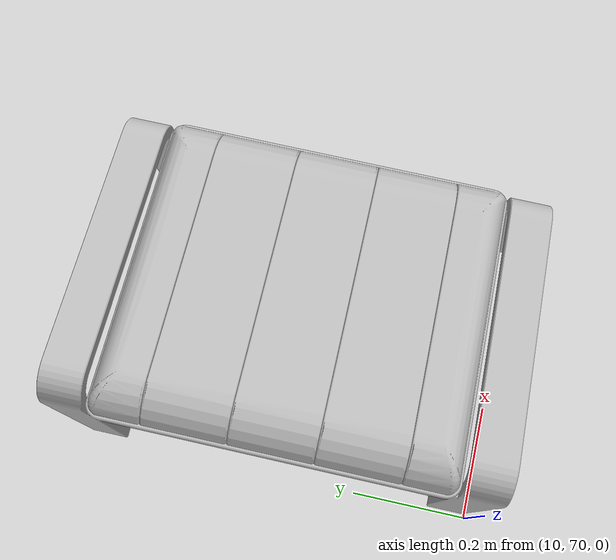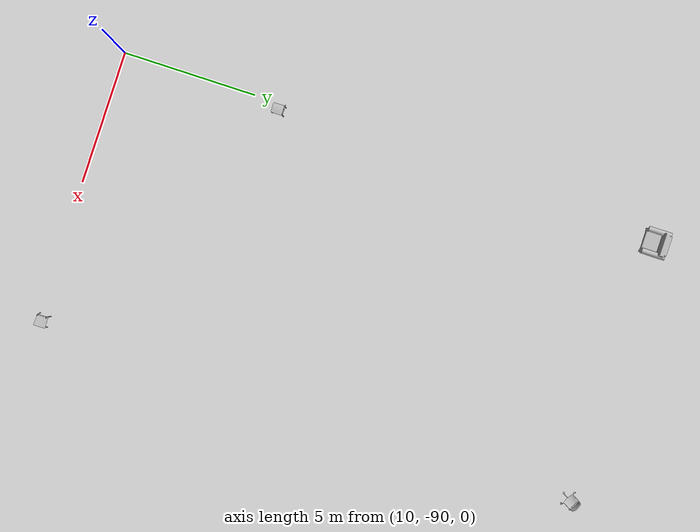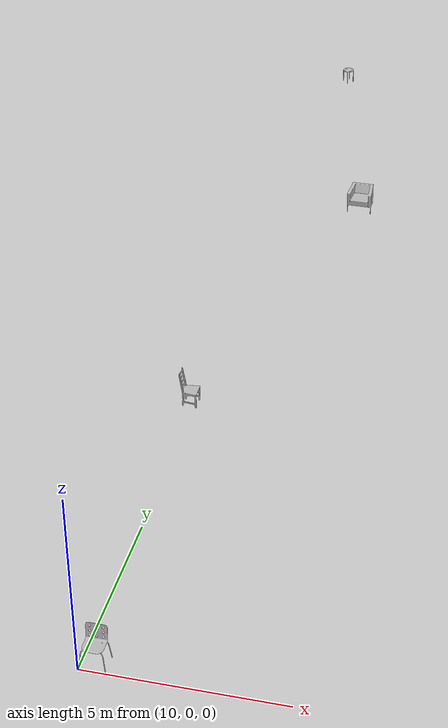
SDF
<sdf version="1.5">
 <world name="default">
  <include><uri>model://sun</uri></include>
  <include><uri>model://ground_plane</uri></include>
  <include><uri>model://IKEA_chair_BORJE</uri><pose>10 -90 0 0 0 0</pose><static>0</static></include>
  <include><uri>model://IKEA_chair_EKTORP</uri><pose>10 -70 0 0 0 0</pose><static>0</static></include>
  <include><uri>model://IKEA_chair_HERMAN</uri><pose>10 -40 0 0 0 0</pose><static>0</static></include>
  <include><uri>model://IKEA_chair_INGOLF</uri><pose>10 -30 0 0 0 0</pose><static>0</static></include>
  <include><uri>model://IKEA_chair_IVAR</uri><pose>10 -20 0 0 0 0</pose><static>0</static></include>
  <include><uri>model://IKEA_chair_JULES</uri><pose>10 000 0 0 0 0</pose><static>0</static></include>
  <include><uri>model://IKEA_chair_KAUSTBY</uri><pose>10 010 0 0 0 0</pose><static>0</static></include>
  <include><uri>model://IKEA_chair_KLAPPSTA</uri><pose>10 020 0 0 0 0</pose><static>0</static></include>
  <include><uri>model://IKEA_chair_MARIUS</uri><pose>10 030 0 0 0 0</pose><static>0</static></include>
  <include><uri>model://IKEA_chair_PATRIK</uri><pose>10 060 0 0 0 0</pose><static>0</static></include>
  <include><uri>model://IKEA_chair_POANG</uri><pose>10 070 0 0 0 0</pose><static>0</static></include>
  <include><uri>model://IKEA_chair_SIGURD</uri><pose>20 -90 0 0 0 0</pose><static>0</static></include>
  <include><uri>model://IKEA_chair_SNILLE</uri><pose>20 -70 0 0 0 0</pose><static>0</static></include>
 </world>
</sdf>

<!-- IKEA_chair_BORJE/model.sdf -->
<sdf version='1.0'>
  <model name='IKEA_chair_BORJE'>
    <static>0</static>
    <link name='link_0'>
      <inertial>
        <mass>1.2701750200945325</mass>
        <inertia>
          <ixx>97055.25334822082</ixx>
          <ixy>5.3782572947442535</ixy>
          <ixz>1.7893252997398377</ixz>
          <iyy>37123.89845614624</iyy>
          <iyz>-15042.314491013527</iyz>
          <izz>87002.98955933255</izz>
        </inertia>
        <pose frame=''>0.265414 0.391875 -6.069073 0 -0 0</pose>
      </inertial>
      <pose frame=''>0 0 0 0 -0 0</pose>
      <visual name='visual'>
        <pose frame=''>0 0 0 1.58096 -0 0</pose>
        <geometry>
          <mesh>
            <uri>model://ikea_models/meshes/IKEA_chair_BORJE/nojitter_png_borje_chair_obj0/borje_chair_obj0_object.obj</uri>
            <scale>0.010000 0.010000 0.010000</scale>
          </mesh>
        </geometry>
      </visual>
      <collision name='collision'>
        <pose frame=''>0 0 0 1.58096 -0 0</pose>
        <geometry>
          <mesh>
            <uri>model://ikea_models/meshes/IKEA_chair_BORJE/nojitter_png_borje_chair_obj0/borje_chair_obj0_object.obj</uri>
            <scale>0.010000 0.010000 0.010000</scale>
          </mesh>
        </geometry>
      </collision>
    </link>
  </model>
</sdf>

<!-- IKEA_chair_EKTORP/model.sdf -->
<sdf version='1.0'>
  <model name='IKEA_chair_EKTORP'>
    <static>0</static>
    <link name='link_0'>
      <inertial>
        <mass>6.69996780991953</mass>
        <inertia>
          <ixx>759052.0931993766</ixx>
          <ixy>-690.8612255697251</ixy>
          <ixz>258.8571697921753</ixz>
          <iyy>975696.508300458</iyy>
          <iyz>-54343.26309907246</iyz>
          <izz>875503.1329380261</izz>
        </inertia>
        <pose frame=''>0.633241 0.379235 -0.593648 0 -0 0</pose>
      </inertial>
      <pose frame=''>0 0 0 0 -0 0</pose>
      <visual name='visual'>
        <pose frame=''>0 0 0 1.58096 -0 0</pose>
        <geometry>
          <mesh>
            <uri>model://ikea_models/meshes/IKEA_chair_EKTORP/nojitter_png_Ektorp_armchair_toft_obj0/Ektorp_armchair_toft_obj0_object.obj</uri>
            <scale>0.010000 0.010000 0.010000</scale>
          </mesh>
        </geometry>
      </visual>
      <collision name='collision'>
        <pose frame=''>0 0 0 1.58096 -0 0</pose>
        <geometry>
          <mesh>
            <uri>model://ikea_models/meshes/IKEA_chair_EKTORP/nojitter_png_Ektorp_armchair_toft_obj0/Ektorp_armchair_toft_obj0_object.obj</uri>
            <scale>0.010000 0.010000 0.010000</scale>
          </mesh>
        </geometry>
      </collision>
    </link>
  </model>
</sdf>

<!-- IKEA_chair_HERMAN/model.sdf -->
<sdf version='1.0'>
  <model name='IKEA_chair_HERMAN'>
    <static>0</static>
    <link name='link_0'>
      <inertial>
        <mass>1.2788298165119858</mass>
        <inertia>
          <ixx>79685.1370511254</ixx>
          <ixy>-84.64093994927407</ixy>
          <ixz>17.035141288757327</ixz>
          <iyy>44455.17980055237</iyy>
          <iyz>-17152.22499446416</iyz>
          <izz>71109.13666590309</izz>
        </inertia>
        <pose frame=''>2.355913 0.358004 -0.758796 0 -0 0</pose>
      </inertial>
      <pose frame=''>0 0 0 0 -0 0</pose>
      <visual name='visual'>
        <pose frame=''>0 0 0 1.58096 -0 0</pose>
        <geometry>
          <mesh>
            <uri>model://ikea_models/meshes/IKEA_chair_HERMAN/nojitter_png_2df47c3d564ce9fec858c7ee0d79c483_obj0/2df47c3d564ce9fec858c7ee0d79c483_obj0_object.obj</uri>
            <scale>0.010000 0.010000 0.010000</scale>
          </mesh>
        </geometry>
      </visual>
      <collision name='collision'>
        <pose frame=''>0 0 0 1.58096 -0 0</pose>
        <geometry>
          <mesh>
            <uri>model://ikea_models/meshes/IKEA_chair_HERMAN/nojitter_png_2df47c3d564ce9fec858c7ee0d79c483_obj0/2df47c3d564ce9fec858c7ee0d79c483_obj0_object.obj</uri>
            <scale>0.010000 0.010000 0.010000</scale>
          </mesh>
        </geometry>
      </collision>
    </link>
  </model>
</sdf>

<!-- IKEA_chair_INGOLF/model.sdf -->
<sdf version='1.0'>
  <model name='IKEA_chair_INGOLF'>
    <static>0</static>
    <link name='link_0'>
      <inertial>
        <mass>1.5452195732872798</mass>
        <inertia>
          <ixx>107387102.56389043</ixx>
          <ixy>-15323472.277896073</ixy>
          <ixz>-0.98556009765625</ixz>
          <iyy>54021845.32280055</iyy>
          <iyz>2.28608427734375</iyz>
          <izz>110725069.52396034</izz>
        </inertia>
        <pose frame=''>-0.264783 0.380963 -0.215000 0 -0 0</pose>
      </inertial>
      <pose frame=''>0 0 0 0 -0 0</pose>
      <visual name='visual'>
        <pose frame=''>0 0 0 1.58096 -0 0</pose>
        <geometry>
          <mesh>
            <uri>model://ikea_models/meshes/IKEA_chair_INGOLF/nojitter_png_2f0a94efe6d1da7f8616812464c86290_obj0/2f0a94efe6d1da7f8616812464c86290_obj0_object.obj</uri>
            <scale>0.001000 0.001000 0.001000</scale>
          </mesh>
        </geometry>
      </visual>
      <collision name='collision'>
        <pose frame=''>0 0 0 1.58096 -0 0</pose>
        <geometry>
          <mesh>
            <uri>model://ikea_models/meshes/IKEA_chair_INGOLF/nojitter_png_2f0a94efe6d1da7f8616812464c86290_obj0/2f0a94efe6d1da7f8616812464c86290_obj0_object.obj</uri>
            <scale>0.001000 0.001000 0.001000</scale>
          </mesh>
        </geometry>
      </collision>
    </link>
  </model>
</sdf>

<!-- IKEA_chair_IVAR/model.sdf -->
<sdf version='1.0'>
  <model name='IKEA_chair_IVAR'>
    <static>0</static>
    <link name='link_0'>
      <inertial>
        <mass>1.268693081679733</mass>
        <inertia>
          <ixx>0.08800231414960476</ixx>
          <ixy>-3.846112625431608e-09</ixy>
          <ixz>1.5711364848014497e-09</ixz>
          <iyy>0.03802209950355856</iyy>
          <iyz>-0.01456997523679236</iyz>
          <izz>0.08404821484852117</izz>
        </inertia>
        <pose frame=''>0.207371 -0.042546 -0.258135 0 -0 0</pose>
      </inertial>
      <pose frame=''>0 0 0 0 -0 0</pose>
      <visual name='visual'>
        <pose frame=''>0 0 0 1.58096 -0 0</pose>
        <geometry>
          <mesh>
            <uri>model://ikea_models/meshes/IKEA_chair_IVAR/nojitter_png_4ca29321dadaae90a516b539b31607a2_obj0/4ca29321dadaae90a516b539b31607a2_obj0_object.obj</uri>
            <scale>1.000000 1.000000 1.000000</scale>
          </mesh>
        </geometry>
      </visual>
      <collision name='collision'>
        <pose frame=''>0 0 0 1.58096 -0 0</pose>
        <geometry>
          <mesh>
            <uri>model://ikea_models/meshes/IKEA_chair_IVAR/nojitter_png_4ca29321dadaae90a516b539b31607a2_obj0/4ca29321dadaae90a516b539b31607a2_obj0_object.obj</uri>
            <scale>1.000000 1.000000 1.000000</scale>
          </mesh>
        </geometry>
      </collision>
    </link>
  </model>
</sdf>

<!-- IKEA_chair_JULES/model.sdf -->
<sdf version='1.0'>
  <model name='IKEA_chair_JULES'>
    <static>0</static>
    <link name='link_0'>
      <inertial>
        <mass>2.26093031365506</mass>
        <inertia>
          <ixx>10833.23729243623</ixx>
          <ixy>-53.600274828705395</ixy>
          <ixz>11.482374366547798</ixz>
          <iyy>6802.249210391376</iyy>
          <iyz>-1402.2212062912256</iyz>
          <izz>12116.740529784354</izz>
        </inertia>
        <pose frame=''>0.331369 0.379330 -0.302056 0 -0 0</pose>
      </inertial>
      <pose frame=''>0 0 0 0 -0 0</pose>
      <visual name='visual'>
        <pose frame=''>0 0 0 1.58096 -0 0</pose>
        <geometry>
          <mesh>
            <uri>model://ikea_models/meshes/IKEA_chair_JULES/nojitter_png_b2bdcf3817372a394904d89e9169817b_obj0/b2bdcf3817372a394904d89e9169817b_obj0_object.obj</uri>
            <scale>0.025400 0.025400 0.025400</scale>
          </mesh>
        </geometry>
      </visual>
      <collision name='collision'>
        <pose frame=''>0 0 0 1.58096 -0 0</pose>
        <geometry>
          <mesh>
            <uri>model://ikea_models/meshes/IKEA_chair_JULES/nojitter_png_b2bdcf3817372a394904d89e9169817b_obj0/b2bdcf3817372a394904d89e9169817b_obj0_object.obj</uri>
            <scale>0.025400 0.025400 0.025400</scale>
          </mesh>
        </geometry>
      </collision>
    </link>
  </model>
</sdf>

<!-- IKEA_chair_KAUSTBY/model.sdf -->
<sdf version='1.0'>
  <model name='IKEA_chair_KAUSTBY'>
    <static>0</static>
    <link name='link_0'>
      <inertial>
        <mass>1.2776460994309233</mass>
        <inertia>
          <ixx>93096.27751205719</ixx>
          <ixy>-17682.436466940762</ixy>
          <ixz>0.02099297431856394</ixz>
          <iyy>37257.39494480825</iyy>
          <iyz>0.02524787972867489</iyz>
          <izz>99496.04210361982</izz>
        </inertia>
        <pose frame=''>-0.224913 0.400112 -0.210000 0 -0 0</pose>
      </inertial>
      <pose frame=''>0 0 0 0 -0 0</pose>
      <visual name='visual'>
        <pose frame=''>0 0 0 1.58096 -0 0</pose>
        <geometry>
          <mesh>
            <uri>model://ikea_models/meshes/IKEA_chair_KAUSTBY/nojitter_png_b4ffc09bede26354143802691fd0e33f_obj0/b4ffc09bede26354143802691fd0e33f_obj0_object.obj</uri>
            <scale>0.010000 0.010000 0.010000</scale>
          </mesh>
        </geometry>
      </visual>
      <collision name='collision'>
        <pose frame=''>0 0 0 1.58096 -0 0</pose>
        <geometry>
          <mesh>
            <uri>model://ikea_models/meshes/IKEA_chair_KAUSTBY/nojitter_png_b4ffc09bede26354143802691fd0e33f_obj0/b4ffc09bede26354143802691fd0e33f_obj0_object.obj</uri>
            <scale>0.010000 0.010000 0.010000</scale>
          </mesh>
        </geometry>
      </collision>
    </link>
  </model>
</sdf>

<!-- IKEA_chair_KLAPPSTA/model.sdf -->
<sdf version='1.0'>
  <model name='IKEA_chair_KLAPPSTA'>
    <static>0</static>
    <link name='link_0'>
      <inertial>
        <mass>3.6037334846864755</mass>
        <inertia>
          <ixx>298787252.0636212</ixx>
          <ixy>107898.76415249999</ixy>
          <ixz>-7497.148322499999</ixz>
          <iyy>309069737.858945</iyy>
          <iyz>-5571481.259700937</iyz>
          <izz>298666167.90485996</izz>
        </inertia>
        <pose frame=''>2.351288 0.353918 -1.453600 0 -0 0</pose>
      </inertial>
      <pose frame=''>0 0 0 0 -0 0</pose>
      <visual name='visual'>
        <pose frame=''>0 0 0 1.58096 -0 0</pose>
        <geometry>
          <mesh>
            <uri>model://ikea_models/meshes/IKEA_chair_KLAPPSTA/nojitter_png_b1f85c18b3ccbe3a8bc6f322a9608b07_obj0/b1f85c18b3ccbe3a8bc6f322a9608b07_obj0_object.obj</uri>
            <scale>0.001000 0.001000 0.001000</scale>
          </mesh>
        </geometry>
      </visual>
      <collision name='collision'>
        <pose frame=''>0 0 0 1.58096 -0 0</pose>
        <geometry>
          <mesh>
            <uri>model://ikea_models/meshes/IKEA_chair_KLAPPSTA/nojitter_png_b1f85c18b3ccbe3a8bc6f322a9608b07_obj0/b1f85c18b3ccbe3a8bc6f322a9608b07_obj0_object.obj</uri>
            <scale>0.001000 0.001000 0.001000</scale>
          </mesh>
        </geometry>
      </collision>
    </link>
  </model>
</sdf>

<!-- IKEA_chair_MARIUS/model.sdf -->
<sdf version='1.0'>
  <model name='IKEA_chair_MARIUS'>
    <static>0</static>
    <link name='link_0'>
      <inertial>
        <mass>0.4138392033993359</mass>
        <inertia>
          <ixx>10227316.161387445</ixx>
          <ixy>14557.25547128418</ixy>
          <ixz>0.0160268603515625</ixz>
          <iyy>6034157.846912539</iyy>
          <iyz>4.025219548339844</iyz>
          <izz>10227369.809019716</izz>
        </inertia>
        <pose frame=''>0.191039 0.241000 -0.190500 0 -0 0</pose>
      </inertial>
      <pose frame=''>0 0 0 0 -0 0</pose>
      <visual name='visual'>
        <pose frame=''>0 0 0 1.58096 -0 0</pose>
        <geometry>
          <mesh>
            <uri>model://ikea_models/meshes/IKEA_chair_MARIUS/nojitter_png_3f5f2d97b8db06408b392aee16858077_obj0/3f5f2d97b8db06408b392aee16858077_obj0_object.obj</uri>
            <scale>0.001000 0.001000 0.001000</scale>
          </mesh>
        </geometry>
      </visual>
      <collision name='collision'>
        <pose frame=''>0 0 0 1.58096 -0 0</pose>
        <geometry>
          <mesh>
            <uri>model://ikea_models/meshes/IKEA_chair_MARIUS/nojitter_png_3f5f2d97b8db06408b392aee16858077_obj0/3f5f2d97b8db06408b392aee16858077_obj0_object.obj</uri>
            <scale>0.001000 0.001000 0.001000</scale>
          </mesh>
        </geometry>
      </collision>
    </link>
  </model>
</sdf>

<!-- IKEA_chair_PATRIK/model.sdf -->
<sdf version='1.0'>
  <model name='IKEA_chair_PATRIK'>
    <static>0</static>
    <link name='link_0'>
      <inertial>
        <mass>2.0714927214681675</mass>
        <inertia>
          <ixx>148753235.43896717</ixx>
          <ixy>15894522.81881323</ixy>
          <ixz>-485675.5166926257</ixz>
          <iyy>93561773.51728898</iyy>
          <iyz>-418965.0702493286</iyz>
          <izz>144557515.085223</izz>
        </inertia>
        <pose frame=''>0.049251 0.383534 -0.017219 0 -0 0</pose>
      </inertial>
      <pose frame=''>0 0 0 0 -0 0</pose>
      <visual name='visual'>
        <pose frame=''>0 0 0 1.58096 -0 0</pose>
        <geometry>
          <mesh>
            <uri>model://ikea_models/meshes/IKEA_chair_PATRIK/nojitter_png_f495c500ef468ea781a172d69c52a28a_obj0/f495c500ef468ea781a172d69c52a28a_obj0_object.obj</uri>
            <scale>0.001000 0.001000 0.001000</scale>
          </mesh>
        </geometry>
      </visual>
      <collision name='collision'>
        <pose frame=''>0 0 0 1.58096 -0 0</pose>
        <geometry>
          <mesh>
            <uri>model://ikea_models/meshes/IKEA_chair_PATRIK/nojitter_png_f495c500ef468ea781a172d69c52a28a_obj0/f495c500ef468ea781a172d69c52a28a_obj0_object.obj</uri>
            <scale>0.001000 0.001000 0.001000</scale>
          </mesh>
        </geometry>
      </collision>
    </link>
  </model>
</sdf>

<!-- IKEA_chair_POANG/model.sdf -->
<sdf version='1.0'>
  <model name='IKEA_chair_POANG'>
    <static>0</static>
    <link name='link_0'>
      <inertial>
        <mass>1.2691913047180188</mass>
        <inertia>
          <ixx>3896.2477531219856</ixx>
          <ixy>-142.83928392791188</ixy>
          <ixz>-0.005963845412040501</ixz>
          <iyy>4640.559799026018</iyy>
          <iyz>-0.004160766697365976</iyz>
          <izz>2514.725787981404</izz>
        </inertia>
        <pose frame=''>0.249718 0.182543 -0.343694 0 -0 0</pose>
      </inertial>
      <pose frame=''>0 0 0 0 -0 0</pose>
      <visual name='visual'>
        <pose frame=''>0 0 0 1.58096 -0 0</pose>
        <geometry>
          <mesh>
            <uri>model://ikea_models/meshes/IKEA_chair_POANG/nojitter_png_1d558bed3e89f8e0e4edfe667419c289_obj0/1d558bed3e89f8e0e4edfe667419c289_obj0_object.obj</uri>
            <scale>0.025400 0.025400 0.025400</scale>
          </mesh>
        </geometry>
      </visual>
      <collision name='collision'>
        <pose frame=''>0 0 0 1.58096 -0 0</pose>
        <geometry>
          <mesh>
            <uri>model://ikea_models/meshes/IKEA_chair_POANG/nojitter_png_1d558bed3e89f8e0e4edfe667419c289_obj0/1d558bed3e89f8e0e4edfe667419c289_obj0_object.obj</uri>
            <scale>0.025400 0.025400 0.025400</scale>
          </mesh>
        </geometry>
      </collision>
    </link>
  </model>
</sdf>

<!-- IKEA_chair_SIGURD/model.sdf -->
<sdf version='1.0'>
  <model name='IKEA_chair_SIGURD'>
    <static>0</static>
    <link name='link_0'>
      <inertial>
        <mass>1.2206268968684137</mass>
        <inertia>
          <ixx>0.06375957425791237</ixx>
          <ixy>-0.004017599017681912</ixy>
          <ixz>-3.351568818672247e-05</ixz>
          <iyy>0.038324682549075346</iyy>
          <iyz>6.478461162124846e-05</iyz>
          <izz>0.06347277344794147</izz>
        </inertia>
        <pose frame=''>0.224738 0.309811 -0.224852 0 -0 0</pose>
      </inertial>
      <pose frame=''>0 0 0 0 -0 0</pose>
      <visual name='visual'>
        <pose frame=''>0 0 0 1.58096 -0 0</pose>
        <geometry>
          <mesh>
            <uri>model://ikea_models/meshes/IKEA_chair_SIGURD/nojitter_png_c45ff54d4192633684cd6dc1b226aa5b_obj0/c45ff54d4192633684cd6dc1b226aa5b_obj0_object.obj</uri>
            <scale>1.000000 1.000000 1.000000</scale>
          </mesh>
        </geometry>
      </visual>
      <collision name='collision'>
        <pose frame=''>0 0 0 1.58096 -0 0</pose>
        <geometry>
          <mesh>
            <uri>model://ikea_models/meshes/IKEA_chair_SIGURD/nojitter_png_c45ff54d4192633684cd6dc1b226aa5b_obj0/c45ff54d4192633684cd6dc1b226aa5b_obj0_object.obj</uri>
            <scale>1.000000 1.000000 1.000000</scale>
          </mesh>
        </geometry>
      </collision>
    </link>
  </model>
</sdf>

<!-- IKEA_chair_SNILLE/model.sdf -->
<sdf version='1.0'>
  <model name='IKEA_chair_SNILLE'>
    <static>0</static>
    <link name='link_0'>
      <inertial>
        <mass>1.9156697467648158</mass>
        <inertia>
          <ixx>8062.079260706275</ixx>
          <ixy>520.6097948623105</ixy>
          <ixz>0.6785998039538879</ixz>
          <iyy>5247.715725030747</iyy>
          <iyz>-905.916503318597</iyz>
          <izz>8054.662492707719</izz>
        </inertia>
        <pose frame=''>0.530094 0.325641 -0.581767 0 -0 0</pose>
      </inertial>
      <pose frame=''>0 0 0 0 -0 0</pose>
      <visual name='visual'>
        <pose frame=''>0 0 0 1.58096 -0 0</pose>
        <geometry>
          <mesh>
            <uri>model://ikea_models/meshes/IKEA_chair_SNILLE/nojitter_png_SNILLE_chair_1_obj0/SNILLE_chair_1_obj0_object.obj</uri>
            <scale>0.025400 0.025400 0.025400</scale>
          </mesh>
        </geometry>
      </visual>
      <collision name='collision'>
        <pose frame=''>0 0 0 1.58096 -0 0</pose>
        <geometry>
          <mesh>
            <uri>model://ikea_models/meshes/IKEA_chair_SNILLE/nojitter_png_SNILLE_chair_1_obj0/SNILLE_chair_1_obj0_object.obj</uri>
            <scale>0.025400 0.025400 0.025400</scale>
          </mesh>
        </geometry>
      </collision>
    </link>
  </model>
</sdf>
